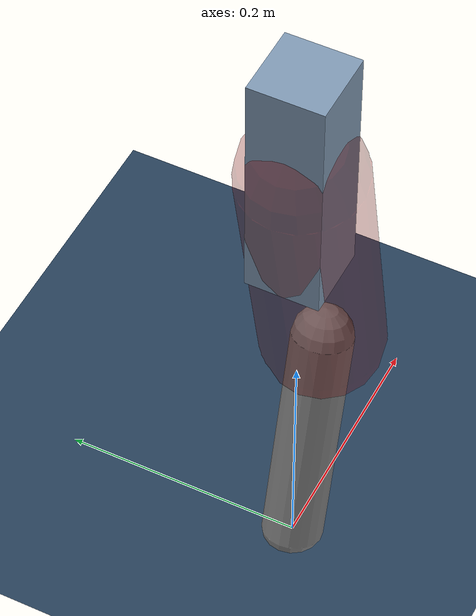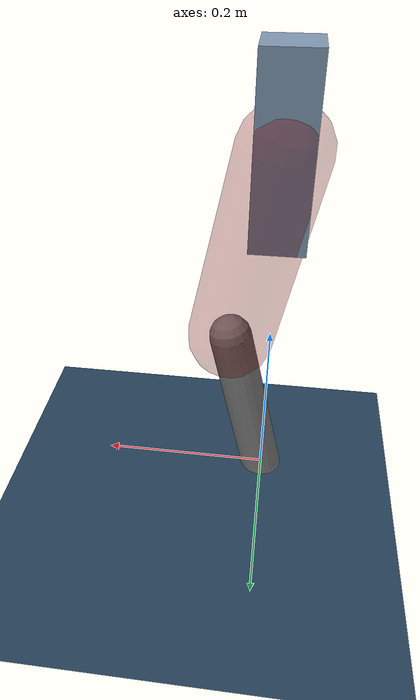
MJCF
<mujoco model="Hopper2D">
	<compiler inertiafromgeom="true" angle="radian" />
	<option timestep="0.001" integrator="implicit" cone="elliptic" solver="Newton" tolerance="1e-10" />

	<default>
		<geom contype="1" conaffinity="1" condim="3" friction="2 0.005 0.0001" solref="0.005 1" />
		<joint limited="true" damping="0.1" />
	</default>

	<asset>
		<texture name="skybox" type="skybox" builtin="gradient" rgb1=".4 .6 .8" rgb2="0 0 0" width="800" height="800" />
		<texture name="grid" type="2d" builtin="checker" rgb1=".1 .2 .3" rgb2=".2 .3 .4" width="300" height="300" mark="edge" markrgb=".2 .3 .4" />
		<material name="ground" texture="grid" texrepeat="1 1" texuniform="true" reflectance="0.1" />
		<material name="leg" rgba="0.5 0.6 0.7 1" />
	</asset>

	<worldbody>

		<geom name="floor" type="plane" size="5 5 0.25" material="ground" />

		<light directional="false" diffuse="0.8 0.8 0.8" specular="0.3 0.3 0.3" pos="0 0 2" dir="0 0 -1" />
		<light mode="targetbodycom" target="base" directional="false" diffuse="0.8 0.8 0.8" specular="0.3 0.3 0.3" pos="0 0 2" dir="0 0 -1" />

		<camera name="fixed" pos="0 -2 1" xyaxes="1 0 0 0 0 1" />
		<camera name="tracking" mode="trackcom" pos="0 -3 1" />

		<body name="root" pos="0 0 0.41672701340189994">
			<joint name="slide_x" type="slide" axis="1 0 0" range="-100 100" />
			<joint name="slide_z" type="slide" axis="0 0 1" range="0 10" />

			<body name="base" pos="0 0 0">
				<geom name="torso" type="box" size="0.03 0.03 0.1" mass="2.143" material="leg" />

				<body name="link1" pos="0 0 0" euler="0 1.3672368580900653 0">
					<joint type="hinge" axis="0 -1 0" pos="0 0 0" name="hinge1" limited="true" range="-3.14 3.14" stiffness="0" damping="0.1" />
					<geom name="thigh" type="capsule" fromto="0 0 0 0.22668530572591206 0 0" size="0.05" rgba="0.5 0 0 0.3" mass="0.7966132643147802" />

					<body name="link2" pos="0.22668530572591206 0 0" euler="0 0.4346938234302753 0">
						<joint type="hinge" axis="0 -1 0" pos="0 0 0" name="hinge2" limited="true" range="-3.14 3.14" stiffness="0" damping="0.1" />
						<geom name="shank" type="capsule" fromto="0 0 0 0.2000417076759879 0 0" size="0.025" mass="0.4009333661407903" />

					</body>
				</body>
			</body>
		</body>
	</worldbody>

	<actuator>
		<motor name="torque1" joint="hinge1" ctrlrange="-80.79786060779276 80.79786060779276" ctrllimited="true" gear="1" />
		<motor name="torque2" joint="hinge2" ctrlrange="-88.60405239711851 88.60405239711851" ctrllimited="true" gear="1" />
	</actuator>
</mujoco>
